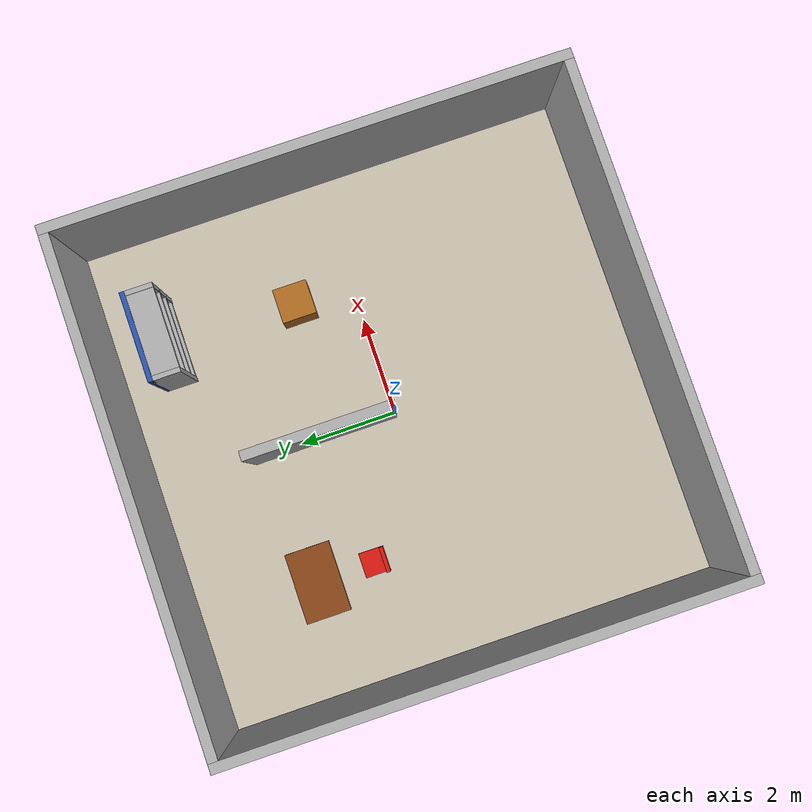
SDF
<?xml version="1.0"?>
<sdf version="1.8">
  <world name="indoor_100sqm">
    <physics name="1ms" type="ignored"><max_step_size>0.001</max_step_size><real_time_factor>1</real_time_factor><real_time_update_rate>1000</real_time_update_rate></physics>
    <plugin filename="gz-sim-physics-system" name="gz::sim::systems::Physics"/>
    <plugin filename="gz-sim-imu-system" name="gz::sim::systems::Imu"/>
    <plugin filename="gz-sim-user-commands-system" name="gz::sim::systems::UserCommands"/>
    <plugin filename="gz-sim-scene-broadcaster-system" name="gz::sim::systems::SceneBroadcaster"/>
    <plugin filename="gz-sim-sensors-system" name="gz::sim::systems::Sensors"><render_engine>ogre2</render_engine></plugin>
    <light type="directional" name="sun"><pose>0 0 8 0 0 0</pose><diffuse>0.95 0.95 0.95 1</diffuse><specular>0.2 0.2 0.2 1</specular><direction>-0.4 0.2 -0.9</direction></light>
    <!-- Interior dimensions 10 x 10 m. Names are evaluation metadata only. -->
    <model name="floor"><static>true</static><pose>0 0 0 0 0 0</pose>
      <link name="floor"><pose>0 0 -0.1 0 0 0</pose><collision name="collision"><geometry><box><size>11 11 0.2</size></box></geometry></collision><visual name="visual"><geometry><box><size>11 11 0.2</size></box></geometry><material><ambient>0.75 0.72 0.65 1</ambient><diffuse>0.75 0.72 0.65 1</diffuse></material></visual></link>
    </model>
    <model name="wall_west"><static>true</static><pose>-5.1 0 0 0 0 0</pose>
      <link name="wall"><pose>0 0 1.25 0 0 0</pose><collision name="collision"><geometry><box><size>0.2 10.4 2.5</size></box></geometry></collision><visual name="visual"><geometry><box><size>0.2 10.4 2.5</size></box></geometry><material><ambient>0.65 0.65 0.65 1</ambient><diffuse>0.65 0.65 0.65 1</diffuse></material></visual></link>
    </model>
    <model name="wall_east"><static>true</static><pose>5.1 0 0 0 0 0</pose>
      <link name="wall"><pose>0 0 1.25 0 0 0</pose><collision name="collision"><geometry><box><size>0.2 10.4 2.5</size></box></geometry></collision><visual name="visual"><geometry><box><size>0.2 10.4 2.5</size></box></geometry><material><ambient>0.65 0.65 0.65 1</ambient><diffuse>0.65 0.65 0.65 1</diffuse></material></visual></link>
    </model>
    <model name="wall_south"><static>true</static><pose>0 -5.1 0 0 0 0</pose>
      <link name="wall"><pose>0 0 1.25 0 0 0</pose><collision name="collision"><geometry><box><size>10 0.2 2.5</size></box></geometry></collision><visual name="visual"><geometry><box><size>10 0.2 2.5</size></box></geometry><material><ambient>0.65 0.65 0.65 1</ambient><diffuse>0.65 0.65 0.65 1</diffuse></material></visual></link>
    </model>
    <model name="wall_north"><static>true</static><pose>0 5.1 0 0 0 0</pose>
      <link name="wall"><pose>0 0 1.25 0 0 0</pose><collision name="collision"><geometry><box><size>10 0.2 2.5</size></box></geometry></collision><visual name="visual"><geometry><box><size>10 0.2 2.5</size></box></geometry><material><ambient>0.65 0.65 0.65 1</ambient><diffuse>0.65 0.65 0.65 1</diffuse></material></visual></link>
    </model>
    <model name="partition"><static>true</static><pose>0 1.5 0 0 0 0</pose>
      <link name="wall"><pose>0 0 1.1 0 0 0</pose><collision name="collision"><geometry><box><size>0.2 3 2.2</size></box></geometry></collision><visual name="visual"><geometry><box><size>0.2 3 2.2</size></box></geometry><material><ambient>0.65 0.65 0.65 1</ambient><diffuse>0.65 0.65 0.65 1</diffuse></material></visual></link>
    </model>
    <model name="office_table"><static>true</static><pose>-2.7 2.5 0 0 0 0</pose>
      <link name="top"><pose>0 0 0.8 0 0 0</pose><collision name="collision"><geometry><box><size>1.4 0.9 0.1</size></box></geometry></collision><visual name="visual"><geometry><box><size>1.4 0.9 0.1</size></box></geometry><material><ambient>0.5 0.25 0.08 1</ambient><diffuse>0.5 0.25 0.08 1</diffuse></material></visual></link>
      <link name="leg_0"><pose>-0.58 -0.33 0.375 0 0 0</pose><collision name="collision"><geometry><box><size>0.1 0.1 0.75</size></box></geometry></collision><visual name="visual"><geometry><box><size>0.1 0.1 0.75</size></box></geometry><material><ambient>0.3 0.2 0.1 1</ambient><diffuse>0.3 0.2 0.1 1</diffuse></material></visual></link>
      <link name="leg_1"><pose>-0.58 0.33 0.375 0 0 0</pose><collision name="collision"><geometry><box><size>0.1 0.1 0.75</size></box></geometry></collision><visual name="visual"><geometry><box><size>0.1 0.1 0.75</size></box></geometry><material><ambient>0.3 0.2 0.1 1</ambient><diffuse>0.3 0.2 0.1 1</diffuse></material></visual></link>
      <link name="leg_2"><pose>0.58 -0.33 0.375 0 0 0</pose><collision name="collision"><geometry><box><size>0.1 0.1 0.75</size></box></geometry></collision><visual name="visual"><geometry><box><size>0.1 0.1 0.75</size></box></geometry><material><ambient>0.3 0.2 0.1 1</ambient><diffuse>0.3 0.2 0.1 1</diffuse></material></visual></link>
      <link name="leg_3"><pose>0.58 0.33 0.375 0 0 0</pose><collision name="collision"><geometry><box><size>0.1 0.1 0.75</size></box></geometry></collision><visual name="visual"><geometry><box><size>0.1 0.1 0.75</size></box></geometry><material><ambient>0.3 0.2 0.1 1</ambient><diffuse>0.3 0.2 0.1 1</diffuse></material></visual></link>
    </model>
    <model name="red_chair"><static>true</static><pose>-2.7 1.35 0 0 0 0</pose>
      <link name="seat"><pose>0 0 0.45 0 0 0</pose><collision name="collision"><geometry><box><size>0.5 0.5 0.1</size></box></geometry></collision><visual name="visual"><geometry><box><size>0.5 0.5 0.1</size></box></geometry><material><ambient>0.8 0.08 0.05 1</ambient><diffuse>0.8 0.08 0.05 1</diffuse></material></visual></link>
      <link name="back"><pose>0 -0.22 0.72 0 0 0</pose><collision name="collision"><geometry><box><size>0.5 0.08 0.5</size></box></geometry></collision><visual name="visual"><geometry><box><size>0.5 0.08 0.5</size></box></geometry><material><ambient>0.8 0.08 0.05 1</ambient><diffuse>0.8 0.08 0.05 1</diffuse></material></visual></link>
      <link name="leg_00"><pose>-0.18 -0.18 0.2 0 0 0</pose><collision name="collision"><geometry><box><size>0.06 0.06 0.4</size></box></geometry></collision><visual name="visual"><geometry><box><size>0.06 0.06 0.4</size></box></geometry><material><ambient>0.65 0.65 0.65 1</ambient><diffuse>0.65 0.65 0.65 1</diffuse></material></visual></link>
      <link name="leg_01"><pose>-0.18 0.18 0.2 0 0 0</pose><collision name="collision"><geometry><box><size>0.06 0.06 0.4</size></box></geometry></collision><visual name="visual"><geometry><box><size>0.06 0.06 0.4</size></box></geometry><material><ambient>0.65 0.65 0.65 1</ambient><diffuse>0.65 0.65 0.65 1</diffuse></material></visual></link>
      <link name="leg_10"><pose>0.18 -0.18 0.2 0 0 0</pose><collision name="collision"><geometry><box><size>0.06 0.06 0.4</size></box></geometry></collision><visual name="visual"><geometry><box><size>0.06 0.06 0.4</size></box></geometry><material><ambient>0.65 0.65 0.65 1</ambient><diffuse>0.65 0.65 0.65 1</diffuse></material></visual></link>
      <link name="leg_11"><pose>0.18 0.18 0.2 0 0 0</pose><collision name="collision"><geometry><box><size>0.06 0.06 0.4</size></box></geometry></collision><visual name="visual"><geometry><box><size>0.06 0.06 0.4</size></box></geometry><material><ambient>0.65 0.65 0.65 1</ambient><diffuse>0.65 0.65 0.65 1</diffuse></material></visual></link>
    </model>
    <model name="storage_shelf"><static>true</static><pose>2.8 3.9 0 0 0 0</pose>
      <link name="back"><pose>0 0.3 0.9 0 0 0</pose><collision name="collision"><geometry><box><size>1.8 0.1 1.8</size></box></geometry></collision><visual name="visual"><geometry><box><size>1.8 0.1 1.8</size></box></geometry><material><ambient>0.15 0.3 0.65 1</ambient><diffuse>0.15 0.3 0.65 1</diffuse></material></visual></link>
      <link name="side_l"><pose>-0.85 0 0.9 0 0 0</pose><collision name="collision"><geometry><box><size>0.1 0.6 1.8</size></box></geometry></collision><visual name="visual"><geometry><box><size>0.1 0.6 1.8</size></box></geometry><material><ambient>0.65 0.65 0.65 1</ambient><diffuse>0.65 0.65 0.65 1</diffuse></material></visual></link>
      <link name="side_r"><pose>0.85 0 0.9 0 0 0</pose><collision name="collision"><geometry><box><size>0.1 0.6 1.8</size></box></geometry></collision><visual name="visual"><geometry><box><size>0.1 0.6 1.8</size></box></geometry><material><ambient>0.65 0.65 0.65 1</ambient><diffuse>0.65 0.65 0.65 1</diffuse></material></visual></link>
      <link name="board_0"><pose>0 0 0.1 0 0 0</pose><collision name="collision"><geometry><box><size>1.7 0.6 0.08</size></box></geometry></collision><visual name="visual"><geometry><box><size>1.7 0.6 0.08</size></box></geometry><material><ambient>0.65 0.65 0.65 1</ambient><diffuse>0.65 0.65 0.65 1</diffuse></material></visual></link>
      <link name="board_1"><pose>0 0 0.65 0 0 0</pose><collision name="collision"><geometry><box><size>1.7 0.6 0.08</size></box></geometry></collision><visual name="visual"><geometry><box><size>1.7 0.6 0.08</size></box></geometry><material><ambient>0.65 0.65 0.65 1</ambient><diffuse>0.65 0.65 0.65 1</diffuse></material></visual></link>
      <link name="board_2"><pose>0 0 1.2 0 0 0</pose><collision name="collision"><geometry><box><size>1.7 0.6 0.08</size></box></geometry></collision><visual name="visual"><geometry><box><size>1.7 0.6 0.08</size></box></geometry><material><ambient>0.65 0.65 0.65 1</ambient><diffuse>0.65 0.65 0.65 1</diffuse></material></visual></link>
      <link name="board_3"><pose>0 0 1.75 0 0 0</pose><collision name="collision"><geometry><box><size>1.7 0.6 0.08</size></box></geometry></collision><visual name="visual"><geometry><box><size>1.7 0.6 0.08</size></box></geometry><material><ambient>0.65 0.65 0.65 1</ambient><diffuse>0.65 0.65 0.65 1</diffuse></material></visual></link>
    </model>
    <model name="storage_box"><static>true</static><pose>2.7 1.2 0 0 0 0</pose>
      <link name="box"><pose>0 0 0.35 0 0 0</pose><collision name="collision"><geometry><box><size>0.7 0.7 0.7</size></box></geometry></collision><visual name="visual"><geometry><box><size>0.7 0.7 0.7</size></box></geometry><material><ambient>0.65 0.4 0.12 1</ambient><diffuse>0.65 0.4 0.12 1</diffuse></material></visual></link>
    </model>
  </world>
</sdf>
